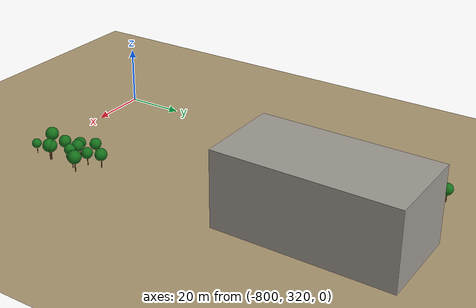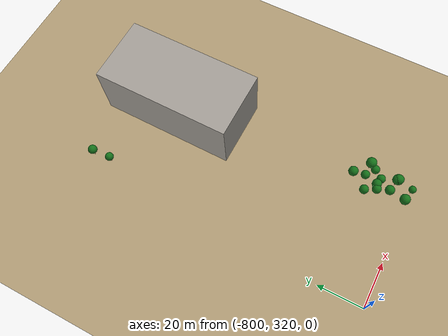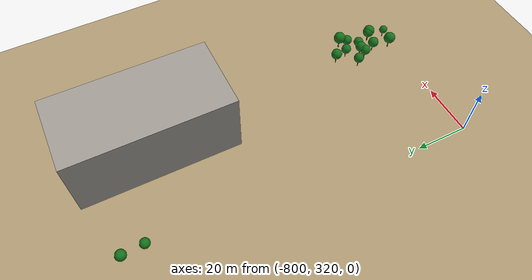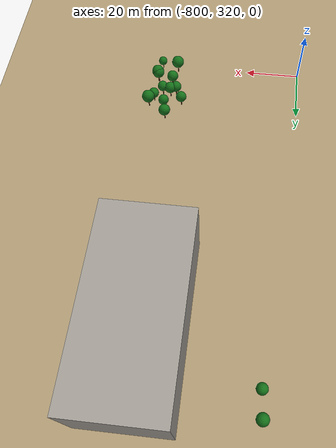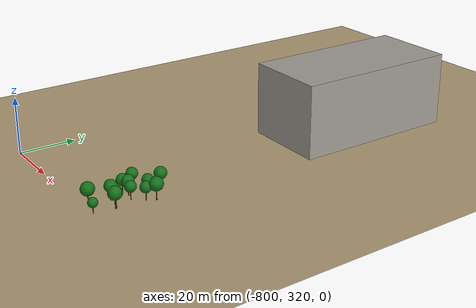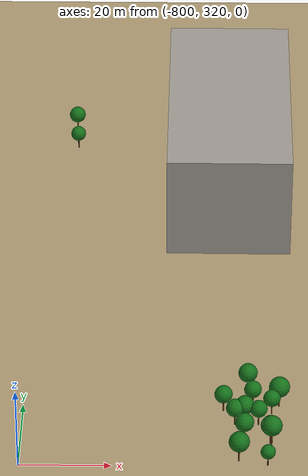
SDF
<sdf version="1.9">
 <world name="crossroad_world">
  <model name="ground_plane">
   <static>true</static>
   <pose>0 0 -0.05 0 0 0</pose>
   <link name="link">
    <collision name="collision">
     <geometry><plane><normal>0 0 1</normal><size>10000 10000</size></plane></geometry>
    </collision>
    <visual name="visual">
     <geometry><plane><normal>0 0 1</normal><size>15000 15000</size></plane></geometry>
     <material><ambient>0.68 0.60 0.45 1</ambient><diffuse>0.68 0.60 0.45 1</diffuse></material>
    </visual>
   </link>
  </model>
  <model name="tree_268">
   <static>true</static>
   <pose>-791.615 441.741 0 0 0 0</pose>
   <link name="link">
    <visual name="trunk">
     <pose>0 0 1.544 0 0 0</pose>
     <geometry><cylinder><radius>0.135</radius><length>3.087</length></cylinder></geometry>
     <material><ambient>0.38 0.22 0.08 1</ambient><diffuse>0.38 0.22 0.08 1</diffuse></material>
    </visual>
    <visual name="canopy">
     <pose>0 0 4.279 0 0 0</pose>
     <geometry><sphere><radius>1.833</radius></sphere></geometry>
     <material><ambient>0.08 0.44 0.10 1</ambient><diffuse>0.08 0.44 0.10 1</diffuse></material>
    </visual>
    <collision name="col">
     <pose>0 0 1.544 0 0 0</pose>
     <geometry><cylinder><radius>0.135</radius><length>3.087</length></cylinder></geometry>
    </collision>
   </link>
  </model>
  <model name="tree_269">
   <static>true</static>
   <pose>-792.136 449.880 0 0 0 0</pose>
   <link name="link">
    <visual name="trunk">
     <pose>0 0 1.667 0 0 0</pose>
     <geometry><cylinder><radius>0.146</radius><length>3.333</length></cylinder></geometry>
     <material><ambient>0.38 0.22 0.08 1</ambient><diffuse>0.38 0.22 0.08 1</diffuse></material>
    </visual>
    <visual name="canopy">
     <pose>0 0 4.620 0 0 0</pose>
     <geometry><sphere><radius>1.979</radius></sphere></geometry>
     <material><ambient>0.08 0.44 0.10 1</ambient><diffuse>0.08 0.44 0.10 1</diffuse></material>
    </visual>
    <collision name="col">
     <pose>0 0 1.667 0 0 0</pose>
     <geometry><cylinder><radius>0.146</radius><length>3.333</length></cylinder></geometry>
    </collision>
   </link>
  </model>
  <model name="tree_270">
   <static>true</static>
   <pose>-752.583 322.036 0 0 0 0</pose>
   <link name="link">
    <visual name="trunk">
     <pose>0 0 1.918 0 0 0</pose>
     <geometry><cylinder><radius>0.168</radius><length>3.837</length></cylinder></geometry>
     <material><ambient>0.38 0.22 0.08 1</ambient><diffuse>0.38 0.22 0.08 1</diffuse></material>
    </visual>
    <visual name="canopy">
     <pose>0 0 5.317 0 0 0</pose>
     <geometry><sphere><radius>2.278</radius></sphere></geometry>
     <material><ambient>0.08 0.44 0.10 1</ambient><diffuse>0.08 0.44 0.10 1</diffuse></material>
    </visual>
    <collision name="col">
     <pose>0 0 1.918 0 0 0</pose>
     <geometry><cylinder><radius>0.168</radius><length>3.837</length></cylinder></geometry>
    </collision>
   </link>
  </model>
  <model name="tree_271">
   <static>true</static>
   <pose>-751.360 329.059 0 0 0 0</pose>
   <link name="link">
    <visual name="trunk">
     <pose>0 0 1.753 0 0 0</pose>
     <geometry><cylinder><radius>0.153</radius><length>3.506</length></cylinder></geometry>
     <material><ambient>0.38 0.22 0.08 1</ambient><diffuse>0.38 0.22 0.08 1</diffuse></material>
    </visual>
    <visual name="canopy">
     <pose>0 0 4.859 0 0 0</pose>
     <geometry><sphere><radius>2.082</radius></sphere></geometry>
     <material><ambient>0.08 0.44 0.10 1</ambient><diffuse>0.08 0.44 0.10 1</diffuse></material>
    </visual>
    <collision name="col">
     <pose>0 0 1.753 0 0 0</pose>
     <geometry><cylinder><radius>0.153</radius><length>3.506</length></cylinder></geometry>
    </collision>
   </link>
  </model>
  <model name="tree_272">
   <static>true</static>
   <pose>-753.340 334.112 0 0 0 0</pose>
   <link name="link">
    <visual name="trunk">
     <pose>0 0 1.695 0 0 0</pose>
     <geometry><cylinder><radius>0.148</radius><length>3.389</length></cylinder></geometry>
     <material><ambient>0.38 0.22 0.08 1</ambient><diffuse>0.38 0.22 0.08 1</diffuse></material>
    </visual>
    <visual name="canopy">
     <pose>0 0 4.697 0 0 0</pose>
     <geometry><sphere><radius>2.012</radius></sphere></geometry>
     <material><ambient>0.08 0.44 0.10 1</ambient><diffuse>0.08 0.44 0.10 1</diffuse></material>
    </visual>
    <collision name="col">
     <pose>0 0 1.695 0 0 0</pose>
     <geometry><cylinder><radius>0.148</radius><length>3.389</length></cylinder></geometry>
    </collision>
   </link>
  </model>
  <model name="tree_273">
   <static>true</static>
   <pose>-746.401 320.598 0 0 0 0</pose>
   <link name="link">
    <visual name="trunk">
     <pose>0 0 1.366 0 0 0</pose>
     <geometry><cylinder><radius>0.120</radius><length>2.732</length></cylinder></geometry>
     <material><ambient>0.38 0.22 0.08 1</ambient><diffuse>0.38 0.22 0.08 1</diffuse></material>
    </visual>
    <visual name="canopy">
     <pose>0 0 3.787 0 0 0</pose>
     <geometry><sphere><radius>1.622</radius></sphere></geometry>
     <material><ambient>0.08 0.44 0.10 1</ambient><diffuse>0.08 0.44 0.10 1</diffuse></material>
    </visual>
    <collision name="col">
     <pose>0 0 1.366 0 0 0</pose>
     <geometry><cylinder><radius>0.120</radius><length>2.732</length></cylinder></geometry>
    </collision>
   </link>
  </model>
  <model name="tree_274">
   <static>true</static>
   <pose>-745.698 327.843 0 0 0 0</pose>
   <link name="link">
    <visual name="trunk">
     <pose>0 0 1.856 0 0 0</pose>
     <geometry><cylinder><radius>0.162</radius><length>3.712</length></cylinder></geometry>
     <material><ambient>0.38 0.22 0.08 1</ambient><diffuse>0.38 0.22 0.08 1</diffuse></material>
    </visual>
    <visual name="canopy">
     <pose>0 0 5.145 0 0 0</pose>
     <geometry><sphere><radius>2.204</radius></sphere></geometry>
     <material><ambient>0.08 0.44 0.10 1</ambient><diffuse>0.08 0.44 0.10 1</diffuse></material>
    </visual>
    <collision name="col">
     <pose>0 0 1.856 0 0 0</pose>
     <geometry><cylinder><radius>0.162</radius><length>3.712</length></cylinder></geometry>
    </collision>
   </link>
  </model>
  <model name="tree_275">
   <static>true</static>
   <pose>-748.203 334.125 0 0 0 0</pose>
   <link name="link">
    <visual name="trunk">
     <pose>0 0 1.617 0 0 0</pose>
     <geometry><cylinder><radius>0.141</radius><length>3.234</length></cylinder></geometry>
     <material><ambient>0.38 0.22 0.08 1</ambient><diffuse>0.38 0.22 0.08 1</diffuse></material>
    </visual>
    <visual name="canopy">
     <pose>0 0 4.482 0 0 0</pose>
     <geometry><sphere><radius>1.920</radius></sphere></geometry>
     <material><ambient>0.08 0.44 0.10 1</ambient><diffuse>0.08 0.44 0.10 1</diffuse></material>
    </visual>
    <collision name="col">
     <pose>0 0 1.617 0 0 0</pose>
     <geometry><cylinder><radius>0.141</radius><length>3.234</length></cylinder></geometry>
    </collision>
   </link>
  </model>
  <model name="tree_276">
   <static>true</static>
   <pose>-745.244 337.786 0 0 0 0</pose>
   <link name="link">
    <visual name="trunk">
     <pose>0 0 1.608 0 0 0</pose>
     <geometry><cylinder><radius>0.141</radius><length>3.216</length></cylinder></geometry>
     <material><ambient>0.38 0.22 0.08 1</ambient><diffuse>0.38 0.22 0.08 1</diffuse></material>
    </visual>
    <visual name="canopy">
     <pose>0 0 4.457 0 0 0</pose>
     <geometry><sphere><radius>1.909</radius></sphere></geometry>
     <material><ambient>0.08 0.44 0.10 1</ambient><diffuse>0.08 0.44 0.10 1</diffuse></material>
    </visual>
    <collision name="col">
     <pose>0 0 1.608 0 0 0</pose>
     <geometry><cylinder><radius>0.141</radius><length>3.216</length></cylinder></geometry>
    </collision>
   </link>
  </model>
  <model name="tree_289">
   <static>true</static>
   <pose>-755.854 338.802 0 0 0 0</pose>
   <link name="link">
    <visual name="trunk">
     <pose>0 0 1.677 0 0 0</pose>
     <geometry><cylinder><radius>0.147</radius><length>3.354</length></cylinder></geometry>
     <material><ambient>0.38 0.22 0.08 1</ambient><diffuse>0.38 0.22 0.08 1</diffuse></material>
    </visual>
    <visual name="canopy">
     <pose>0 0 4.648 0 0 0</pose>
     <geometry><sphere><radius>1.991</radius></sphere></geometry>
     <material><ambient>0.08 0.44 0.10 1</ambient><diffuse>0.08 0.44 0.10 1</diffuse></material>
    </visual>
    <collision name="col">
     <pose>0 0 1.677 0 0 0</pose>
     <geometry><cylinder><radius>0.147</radius><length>3.354</length></cylinder></geometry>
    </collision>
   </link>
  </model>
  <model name="tree_290">
   <static>true</static>
   <pose>-751.233 334.933 0 0 0 0</pose>
   <link name="link">
    <visual name="trunk">
     <pose>0 0 1.763 0 0 0</pose>
     <geometry><cylinder><radius>0.154</radius><length>3.526</length></cylinder></geometry>
     <material><ambient>0.38 0.22 0.08 1</ambient><diffuse>0.38 0.22 0.08 1</diffuse></material>
    </visual>
    <visual name="canopy">
     <pose>0 0 4.887 0 0 0</pose>
     <geometry><sphere><radius>2.094</radius></sphere></geometry>
     <material><ambient>0.08 0.44 0.10 1</ambient><diffuse>0.08 0.44 0.10 1</diffuse></material>
    </visual>
    <collision name="col">
     <pose>0 0 1.763 0 0 0</pose>
     <geometry><cylinder><radius>0.154</radius><length>3.526</length></cylinder></geometry>
    </collision>
   </link>
  </model>
  <model name="tree_291">
   <static>true</static>
   <pose>-749.363 340.765 0 0 0 0</pose>
   <link name="link">
    <visual name="trunk">
     <pose>0 0 1.625 0 0 0</pose>
     <geometry><cylinder><radius>0.142</radius><length>3.251</length></cylinder></geometry>
     <material><ambient>0.38 0.22 0.08 1</ambient><diffuse>0.38 0.22 0.08 1</diffuse></material>
    </visual>
    <visual name="canopy">
     <pose>0 0 4.505 0 0 0</pose>
     <geometry><sphere><radius>1.930</radius></sphere></geometry>
     <material><ambient>0.08 0.44 0.10 1</ambient><diffuse>0.08 0.44 0.10 1</diffuse></material>
    </visual>
    <collision name="col">
     <pose>0 0 1.625 0 0 0</pose>
     <geometry><cylinder><radius>0.142</radius><length>3.251</length></cylinder></geometry>
    </collision>
   </link>
  </model>
  <model name="tree_292">
   <static>true</static>
   <pose>-750.389 345.932 0 0 0 0</pose>
   <link name="link">
    <visual name="trunk">
     <pose>0 0 1.794 0 0 0</pose>
     <geometry><cylinder><radius>0.157</radius><length>3.587</length></cylinder></geometry>
     <material><ambient>0.38 0.22 0.08 1</ambient><diffuse>0.38 0.22 0.08 1</diffuse></material>
    </visual>
    <visual name="canopy">
     <pose>0 0 4.972 0 0 0</pose>
     <geometry><sphere><radius>2.130</radius></sphere></geometry>
     <material><ambient>0.08 0.44 0.10 1</ambient><diffuse>0.08 0.44 0.10 1</diffuse></material>
    </visual>
    <collision name="col">
     <pose>0 0 1.794 0 0 0</pose>
     <geometry><cylinder><radius>0.157</radius><length>3.587</length></cylinder></geometry>
    </collision>
   </link>
  </model>
  <model name="tree_293">
   <static>true</static>
   <pose>-745.458 327.448 0 0 0 0</pose>
   <link name="link">
    <visual name="trunk">
     <pose>0 0 1.913 0 0 0</pose>
     <geometry><cylinder><radius>0.167</radius><length>3.825</length></cylinder></geometry>
     <material><ambient>0.38 0.22 0.08 1</ambient><diffuse>0.38 0.22 0.08 1</diffuse></material>
    </visual>
    <visual name="canopy">
     <pose>0 0 5.301 0 0 0</pose>
     <geometry><sphere><radius>2.271</radius></sphere></geometry>
     <material><ambient>0.08 0.44 0.10 1</ambient><diffuse>0.08 0.44 0.10 1</diffuse></material>
    </visual>
    <collision name="col">
     <pose>0 0 1.913 0 0 0</pose>
     <geometry><cylinder><radius>0.167</radius><length>3.825</length></cylinder></geometry>
    </collision>
   </link>
  </model>
  <model name="tree_295">
   <static>true</static>
   <pose>-743.567 340.488 0 0 0 0</pose>
   <link name="link">
    <visual name="trunk">
     <pose>0 0 1.956 0 0 0</pose>
     <geometry><cylinder><radius>0.171</radius><length>3.913</length></cylinder></geometry>
     <material><ambient>0.38 0.22 0.08 1</ambient><diffuse>0.38 0.22 0.08 1</diffuse></material>
    </visual>
    <visual name="canopy">
     <pose>0 0 5.423 0 0 0</pose>
     <geometry><sphere><radius>2.323</radius></sphere></geometry>
     <material><ambient>0.08 0.44 0.10 1</ambient><diffuse>0.08 0.44 0.10 1</diffuse></material>
    </visual>
    <collision name="col">
     <pose>0 0 1.956 0 0 0</pose>
     <geometry><cylinder><radius>0.171</radius><length>3.913</length></cylinder></geometry>
    </collision>
   </link>
  </model>
  <model name="building_122">
   <static>true</static>
   <pose>-754.110 427.087 13.005 0 0 -0.006</pose>
   <link name="link">
    <visual name="body">
     <geometry><box><size>29.36 60.00 26.01</size></box></geometry>
     <material><ambient>0.63 0.61 0.58 1</ambient><diffuse>0.63 0.61 0.58 1</diffuse></material>
    </visual>
    <collision name="col"><geometry><box><size>29.36 60.00 26.01</size></box></geometry></collision>
   </link>
  </model>
 </world>
</sdf>
